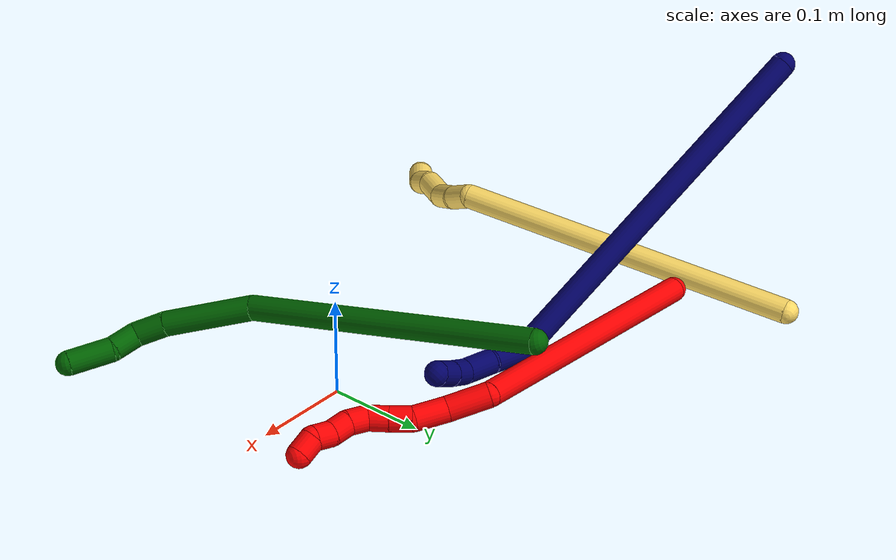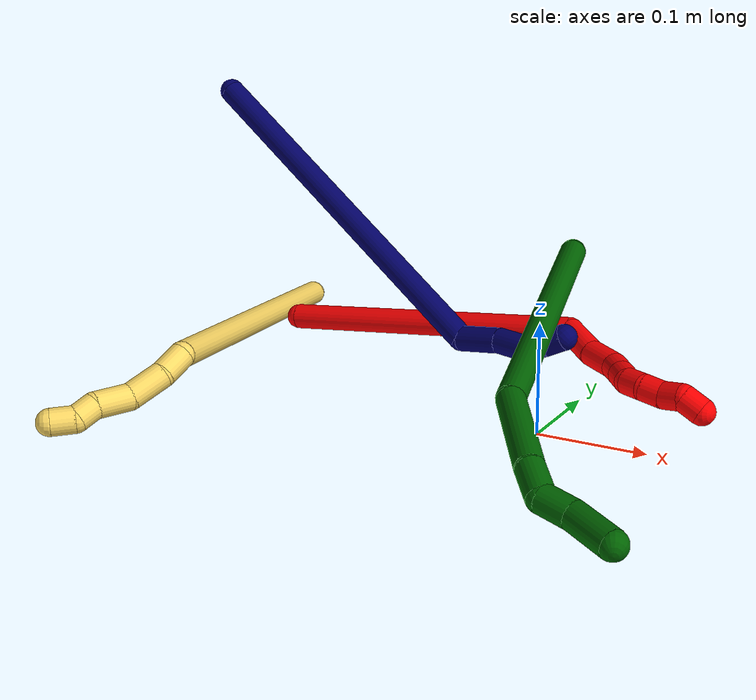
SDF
<sdf version="1.7">
 <world name="default">
  <model name="2">
   <static>0</static>
   <link name="2">
    <collision name="collision-cylinder-e_1_1_4">
     <pose>-0.047955 -0.00534 -0.143271 3.10434 -0.322783 -2.91372</pose>
     <geometry><cylinder><radius>0.0125</radius><length>0.302355</length></cylinder></geometry>
     <surface>
      <friction><ode><mu>1.16</mu><mu2>1.16</mu2><slip1>0</slip1><slip2>0</slip2></ode></friction>
      <contact><ode><kp>1e+06</kp><kd>1</kd><max_vel>0</max_vel><min_depth>0.001</min_depth></ode></contact>
     </surface>
    </collision>
    <visual name="visual-cylinder-e_1_1_4">
     <pose>-0.047955 -0.00534 -0.143271 3.10434 -0.322783 -2.91372</pose>
     <geometry><cylinder><radius>0.0125</radius><length>0.302355</length></cylinder></geometry>
     <material><ambient>1 0 0 1</ambient></material>
    </visual>
    <collision name="collision-cylinder-e_2_4_5">
     <pose>-0.087491 -0.01514 -0.305141 2.90628 0.414626 2.11762</pose>
     <geometry><cylinder><radius>0.0125</radius><length>0.041794</length></cylinder></geometry>
     <surface>
      <friction><ode><mu>1.16</mu><mu2>1.16</mu2><slip1>0</slip1><slip2>0</slip2></ode></friction>
      <contact><ode><kp>1e+06</kp><kd>1</kd><max_vel>0</max_vel><min_depth>0.001</min_depth></ode></contact>
     </surface>
    </collision>
    <visual name="visual-cylinder-e_2_4_5">
     <pose>-0.087491 -0.01514 -0.305141 2.90628 0.414626 2.11762</pose>
     <geometry><cylinder><radius>0.0125</radius><length>0.041794</length></cylinder></geometry>
     <material><ambient>1 0 0 1</ambient></material>
    </visual>
    <collision name="collision-cylinder-e_3_5_6">
     <pose>-0.074855 -0.021192 -0.339826 3.04288 0.255223 2.40659</pose>
     <geometry><cylinder><radius>0.0125</radius><length>0.03341</length></cylinder></geometry>
     <surface>
      <friction><ode><mu>1.16</mu><mu2>1.16</mu2><slip1>0</slip1><slip2>0</slip2></ode></friction>
      <contact><ode><kp>1e+06</kp><kd>1</kd><max_vel>0</max_vel><min_depth>0.001</min_depth></ode></contact>
     </surface>
    </collision>
    <visual name="visual-cylinder-e_3_5_6">
     <pose>-0.074855 -0.021192 -0.339826 3.04288 0.255223 2.40659</pose>
     <geometry><cylinder><radius>0.0125</radius><length>0.03341</length></cylinder></geometry>
     <material><ambient>1 0 0 1</ambient></material>
    </visual>
    <collision name="collision-cylinder-e_4_6_7">
     <pose>-0.064408 -0.022021 -0.364804 -3.05584 0.609384 -2.87042</pose>
     <geometry><cylinder><radius>0.0125</radius><length>0.02177</length></cylinder></geometry>
     <surface>
      <friction><ode><mu>1.16</mu><mu2>1.16</mu2><slip1>0</slip1><slip2>0</slip2></ode></friction>
      <contact><ode><kp>1e+06</kp><kd>1</kd><max_vel>0</max_vel><min_depth>0.001</min_depth></ode></contact>
     </surface>
    </collision>
    <visual name="visual-cylinder-e_4_6_7">
     <pose>-0.064408 -0.022021 -0.364804 -3.05584 0.609384 -2.87042</pose>
     <geometry><cylinder><radius>0.0125</radius><length>0.02177</length></cylinder></geometry>
     <material><ambient>1 0 0 1</ambient></material>
    </visual>
    <collision name="collision-cylinder-e_5_7_8">
     <pose>-0.052042 -0.020217 -0.381906 -3.01564 0.637981 -2.76428</pose>
     <geometry><cylinder><radius>0.0125</radius><length>0.020602</length></cylinder></geometry>
     <surface>
      <friction><ode><mu>1.16</mu><mu2>1.16</mu2><slip1>0</slip1><slip2>0</slip2></ode></friction>
      <contact><ode><kp>1e+06</kp><kd>1</kd><max_vel>0</max_vel><min_depth>0.001</min_depth></ode></contact>
     </surface>
    </collision>
    <visual name="visual-cylinder-e_5_7_8">
     <pose>-0.052042 -0.020217 -0.381906 -3.01564 0.637981 -2.76428</pose>
     <geometry><cylinder><radius>0.0125</radius><length>0.020602</length></cylinder></geometry>
     <material><ambient>1 0 0 1</ambient></material>
    </visual>
    <collision name="collision-cylinder-e_6_8_9">
     <pose>-0.044302 -0.019371 -0.399995 3.12199 0.161008 2.89982</pose>
     <geometry><cylinder><radius>0.0125</radius><length>0.020022</length></cylinder></geometry>
     <surface>
      <friction><ode><mu>1.16</mu><mu2>1.16</mu2><slip1>0</slip1><slip2>0</slip2></ode></friction>
      <contact><ode><kp>1e+06</kp><kd>1</kd><max_vel>0</max_vel><min_depth>0.001</min_depth></ode></contact>
     </surface>
    </collision>
    <visual name="visual-cylinder-e_6_8_9">
     <pose>-0.044302 -0.019371 -0.399995 3.12199 0.161008 2.89982</pose>
     <geometry><cylinder><radius>0.0125</radius><length>0.020022</length></cylinder></geometry>
     <material><ambient>1 0 0 1</ambient></material>
    </visual>
    <collision name="collision-cylinder-e_7_9_10">
     <pose>-0.043679 -0.021997 -0.419546 2.89526 -0.098076 -0.754889</pose>
     <geometry><cylinder><radius>0.0125</radius><length>0.020042</length></cylinder></geometry>
     <surface>
      <friction><ode><mu>1.16</mu><mu2>1.16</mu2><slip1>0</slip1><slip2>0</slip2></ode></friction>
      <contact><ode><kp>1e+06</kp><kd>1</kd><max_vel>0</max_vel><min_depth>0.001</min_depth></ode></contact>
     </surface>
    </collision>
    <visual name="visual-cylinder-e_7_9_10">
     <pose>-0.043679 -0.021997 -0.419546 2.89526 -0.098076 -0.754889</pose>
     <geometry><cylinder><radius>0.0125</radius><length>0.020042</length></cylinder></geometry>
     <material><ambient>1 0 0 1</ambient></material>
    </visual>
    <collision name="collision-cylinder-e_8_10_11">
     <pose>-0.045313 -0.023773 -0.439177 -3.0759 -0.065297 1.56476</pose>
     <geometry><cylinder><radius>0.0125</radius><length>0.020004</length></cylinder></geometry>
     <surface>
      <friction><ode><mu>1.16</mu><mu2>1.16</mu2><slip1>0</slip1><slip2>0</slip2></ode></friction>
      <contact><ode><kp>1e+06</kp><kd>1</kd><max_vel>0</max_vel><min_depth>0.001</min_depth></ode></contact>
     </surface>
    </collision>
    <visual name="visual-cylinder-e_8_10_11">
     <pose>-0.045313 -0.023773 -0.439177 -3.0759 -0.065297 1.56476</pose>
     <geometry><cylinder><radius>0.0125</radius><length>0.020004</length></cylinder></geometry>
     <material><ambient>1 0 0 1</ambient></material>
    </visual>
    <collision name="collision-cylinder-e_9_11_2">
     <pose>-0.046857 -0.028746 -0.457354 2.54108 -0.089302 -0.286642</pose>
     <geometry><cylinder><radius>0.0125</radius><length>0.02</length></cylinder></geometry>
     <surface>
      <friction><ode><mu>1.16</mu><mu2>1.16</mu2><slip1>0</slip1><slip2>0</slip2></ode></friction>
      <contact><ode><kp>1e+06</kp><kd>1</kd><max_vel>0</max_vel><min_depth>0.001</min_depth></ode></contact>
     </surface>
    </collision>
    <visual name="visual-cylinder-e_9_11_2">
     <pose>-0.046857 -0.028746 -0.457354 2.54108 -0.089302 -0.286642</pose>
     <geometry><cylinder><radius>0.0125</radius><length>0.02</length></cylinder></geometry>
     <material><ambient>1 0 0 1</ambient></material>
    </visual>
    <collision name="collision-sphere-2">
     <pose>-0.047749 -0.034374 -0.465572 0 -0 0</pose>
     <geometry><sphere><radius>0.0125</radius></sphere></geometry>
     <surface>
      <friction><ode><mu>1.16</mu><mu2>1.16</mu2><slip1>0</slip1><slip2>0</slip2></ode></friction>
      <contact><ode><kp>1e+06</kp><kd>1</kd><max_vel>0</max_vel><min_depth>0.001</min_depth></ode></contact>
     </surface>
    </collision>
    <visual name="visual-sphere-2">
     <pose>-0.047749 -0.034374 -0.465572 0 -0 0</pose>
     <geometry><sphere><radius>0.0125</radius></sphere></geometry>
     <material><ambient>1 0 0 1</ambient></material>
    </visual>
    <collision name="collision-sphere-11">
     <pose>-0.045965 -0.023118 -0.449136 0 -0 0</pose>
     <geometry><sphere><radius>0.0125</radius></sphere></geometry>
     <surface>
      <friction><ode><mu>1.16</mu><mu2>1.16</mu2><slip1>0</slip1><slip2>0</slip2></ode></friction>
      <contact><ode><kp>1e+06</kp><kd>1</kd><max_vel>0</max_vel><min_depth>0.001</min_depth></ode></contact>
     </surface>
    </collision>
    <visual name="visual-sphere-11">
     <pose>-0.045965 -0.023118 -0.449136 0 -0 0</pose>
     <geometry><sphere><radius>0.0125</radius></sphere></geometry>
     <material><ambient>1 0 0 1</ambient></material>
    </visual>
    <collision name="collision-sphere-10">
     <pose>-0.04466 -0.024428 -0.429218 0 -0 0</pose>
     <geometry><sphere><radius>0.0125</radius></sphere></geometry>
     <surface>
      <friction><ode><mu>1.16</mu><mu2>1.16</mu2><slip1>0</slip1><slip2>0</slip2></ode></friction>
      <contact><ode><kp>1e+06</kp><kd>1</kd><max_vel>0</max_vel><min_depth>0.001</min_depth></ode></contact>
     </surface>
    </collision>
    <visual name="visual-sphere-10">
     <pose>-0.04466 -0.024428 -0.429218 0 -0 0</pose>
     <geometry><sphere><radius>0.0125</radius></sphere></geometry>
     <material><ambient>1 0 0 1</ambient></material>
    </visual>
    <collision name="collision-sphere-9">
     <pose>-0.042698 -0.019565 -0.409874 0 -0 0</pose>
     <geometry><sphere><radius>0.0125</radius></sphere></geometry>
     <surface>
      <friction><ode><mu>1.16</mu><mu2>1.16</mu2><slip1>0</slip1><slip2>0</slip2></ode></friction>
      <contact><ode><kp>1e+06</kp><kd>1</kd><max_vel>0</max_vel><min_depth>0.001</min_depth></ode></contact>
     </surface>
    </collision>
    <visual name="visual-sphere-9">
     <pose>-0.042698 -0.019565 -0.409874 0 -0 0</pose>
     <geometry><sphere><radius>0.0125</radius></sphere></geometry>
     <material><ambient>1 0 0 1</ambient></material>
    </visual>
    <collision name="collision-sphere-4">
     <pose>-0.095909 -0.010681 -0.286542 0 -0 0</pose>
     <geometry><sphere><radius>0.0125</radius></sphere></geometry>
     <surface>
      <friction><ode><mu>1.16</mu><mu2>1.16</mu2><slip1>0</slip1><slip2>0</slip2></ode></friction>
      <contact><ode><kp>1e+06</kp><kd>1</kd><max_vel>0</max_vel><min_depth>0.001</min_depth></ode></contact>
     </surface>
    </collision>
    <visual name="visual-sphere-4">
     <pose>-0.095909 -0.010681 -0.286542 0 -0 0</pose>
     <geometry><sphere><radius>0.0125</radius></sphere></geometry>
     <material><ambient>1 0 0 1</ambient></material>
    </visual>
    <collision name="collision-sphere-1">
     <geometry><sphere><radius>0.0125</radius></sphere></geometry>
     <surface>
      <friction><ode><mu>1.16</mu><mu2>1.16</mu2><slip1>0</slip1><slip2>0</slip2></ode></friction>
      <contact><ode><kp>1e+06</kp><kd>1</kd><max_vel>0</max_vel><min_depth>0.001</min_depth></ode></contact>
     </surface>
    </collision>
    <visual name="visual-sphere-1">
     <geometry><sphere><radius>0.0125</radius></sphere></geometry>
     <material><ambient>1 0 0 1</ambient></material>
    </visual>
    <collision name="collision-sphere-8">
     <pose>-0.045907 -0.019177 -0.390115 0 -0 0</pose>
     <geometry><sphere><radius>0.0125</radius></sphere></geometry>
     <surface>
      <friction><ode><mu>1.16</mu><mu2>1.16</mu2><slip1>0</slip1><slip2>0</slip2></ode></friction>
      <contact><ode><kp>1e+06</kp><kd>1</kd><max_vel>0</max_vel><min_depth>0.001</min_depth></ode></contact>
     </surface>
    </collision>
    <visual name="visual-sphere-8">
     <pose>-0.045907 -0.019177 -0.390115 0 -0 0</pose>
     <geometry><sphere><radius>0.0125</radius></sphere></geometry>
     <material><ambient>1 0 0 1</ambient></material>
    </visual>
    <collision name="collision-sphere-5">
     <pose>-0.079073 -0.019599 -0.323741 0 -0 0</pose>
     <geometry><sphere><radius>0.0125</radius></sphere></geometry>
     <surface>
      <friction><ode><mu>1.16</mu><mu2>1.16</mu2><slip1>0</slip1><slip2>0</slip2></ode></friction>
      <contact><ode><kp>1e+06</kp><kd>1</kd><max_vel>0</max_vel><min_depth>0.001</min_depth></ode></contact>
     </surface>
    </collision>
    <visual name="visual-sphere-5">
     <pose>-0.079073 -0.019599 -0.323741 0 -0 0</pose>
     <geometry><sphere><radius>0.0125</radius></sphere></geometry>
     <material><ambient>1 0 0 1</ambient></material>
    </visual>
    <collision name="collision-sphere-6">
     <pose>-0.070638 -0.022785 -0.355911 0 -0 0</pose>
     <geometry><sphere><radius>0.0125</radius></sphere></geometry>
     <surface>
      <friction><ode><mu>1.16</mu><mu2>1.16</mu2><slip1>0</slip1><slip2>0</slip2></ode></friction>
      <contact><ode><kp>1e+06</kp><kd>1</kd><max_vel>0</max_vel><min_depth>0.001</min_depth></ode></contact>
     </surface>
    </collision>
    <visual name="visual-sphere-6">
     <pose>-0.070638 -0.022785 -0.355911 0 -0 0</pose>
     <geometry><sphere><radius>0.0125</radius></sphere></geometry>
     <material><ambient>1 0 0 1</ambient></material>
    </visual>
    <collision name="collision-sphere-7">
     <pose>-0.058178 -0.021256 -0.373697 0 -0 0</pose>
     <geometry><sphere><radius>0.0125</radius></sphere></geometry>
     <surface>
      <friction><ode><mu>1.16</mu><mu2>1.16</mu2><slip1>0</slip1><slip2>0</slip2></ode></friction>
      <contact><ode><kp>1e+06</kp><kd>1</kd><max_vel>0</max_vel><min_depth>0.001</min_depth></ode></contact>
     </surface>
    </collision>
    <visual name="visual-sphere-7">
     <pose>-0.058178 -0.021256 -0.373697 0 -0 0</pose>
     <geometry><sphere><radius>0.0125</radius></sphere></geometry>
     <material><ambient>1 0 0 1</ambient></material>
    </visual>
    <inertial>
     <pose>-0.053475 -0.011461 -0.23517 0 -0 0</pose>
     <mass>0.5</mass>
     <inertia>
      <ixx>-0.002638</ixx>
      <ixy>0</ixy>
      <ixz>0</ixz>
      <iyy>0.00178</iyy>
      <iyz>0</iyz>
      <izz>0.000777</izz>
     </inertia>
    </inertial>
   </link>
   <pose>-0.33629 0.153058 0.019362 1.62348 0.239441 -1.85914</pose>
  </model>
  <model name="5">
   <static>0</static>
   <link name="5">
    <collision name="collision-cylinder-e_1_1_4">
     <pose>0.083844 -0.143086 -0.069261 2.0216 0.485349 0.752132</pose>
     <geometry><cylinder><radius>0.0125</radius><length>0.359447</length></cylinder></geometry>
     <surface>
      <friction><ode><mu>1.16</mu><mu2>1.16</mu2><slip1>0</slip1><slip2>0</slip2></ode></friction>
      <contact><ode><kp>1e+06</kp><kd>1</kd><max_vel>0</max_vel><min_depth>0.001</min_depth></ode></contact>
     </surface>
    </collision>
    <visual name="visual-cylinder-e_1_1_4">
     <pose>0.083844 -0.143086 -0.069261 2.0216 0.485349 0.752132</pose>
     <geometry><cylinder><radius>0.0125</radius><length>0.359447</length></cylinder></geometry>
     <material><ambient>1 0.858824 0.4 1</ambient></material>
    </visual>
    <collision name="collision-cylinder-e_2_4_5">
     <pose>0.177848 -0.289828 -0.1474 2.75096 0.813667 2.2807</pose>
     <geometry><cylinder><radius>0.0125</radius><length>0.027957</length></cylinder></geometry>
     <surface>
      <friction><ode><mu>1.16</mu><mu2>1.16</mu2><slip1>0</slip1><slip2>0</slip2></ode></friction>
      <contact><ode><kp>1e+06</kp><kd>1</kd><max_vel>0</max_vel><min_depth>0.001</min_depth></ode></contact>
     </surface>
    </collision>
    <visual name="visual-cylinder-e_2_4_5">
     <pose>0.177848 -0.289828 -0.1474 2.75096 0.813667 2.2807</pose>
     <geometry><cylinder><radius>0.0125</radius><length>0.027957</length></cylinder></geometry>
     <material><ambient>1 0.858824 0.4 1</ambient></material>
    </visual>
    <collision name="collision-cylinder-e_3_5_6">
     <pose>0.198351 -0.295561 -0.170688 2.99847 0.617696 2.69957</pose>
     <geometry><cylinder><radius>0.0125</radius><length>0.035719</length></cylinder></geometry>
     <surface>
      <friction><ode><mu>1.16</mu><mu2>1.16</mu2><slip1>0</slip1><slip2>0</slip2></ode></friction>
      <contact><ode><kp>1e+06</kp><kd>1</kd><max_vel>0</max_vel><min_depth>0.001</min_depth></ode></contact>
     </surface>
    </collision>
    <visual name="visual-cylinder-e_3_5_6">
     <pose>0.198351 -0.295561 -0.170688 2.99847 0.617696 2.69957</pose>
     <geometry><cylinder><radius>0.0125</radius><length>0.035719</length></cylinder></geometry>
     <material><ambient>1 0.858824 0.4 1</ambient></material>
    </visual>
    <collision name="collision-cylinder-e_4_6_7">
     <pose>0.213713 -0.303357 -0.200264 2.78096 0.300263 1.38531</pose>
     <geometry><cylinder><radius>0.0125</radius><length>0.033935</length></cylinder></geometry>
     <surface>
      <friction><ode><mu>1.16</mu><mu2>1.16</mu2><slip1>0</slip1><slip2>0</slip2></ode></friction>
      <contact><ode><kp>1e+06</kp><kd>1</kd><max_vel>0</max_vel><min_depth>0.001</min_depth></ode></contact>
     </surface>
    </collision>
    <visual name="visual-cylinder-e_4_6_7">
     <pose>0.213713 -0.303357 -0.200264 2.78096 0.300263 1.38531</pose>
     <geometry><cylinder><radius>0.0125</radius><length>0.033935</length></cylinder></geometry>
     <material><ambient>1 0.858824 0.4 1</ambient></material>
    </visual>
    <collision name="collision-cylinder-e_5_7_8">
     <pose>0.225171 -0.311253 -0.223149 2.86675 0.67645 2.39238</pose>
     <geometry><cylinder><radius>0.0125</radius><length>0.020572</length></cylinder></geometry>
     <surface>
      <friction><ode><mu>1.16</mu><mu2>1.16</mu2><slip1>0</slip1><slip2>0</slip2></ode></friction>
      <contact><ode><kp>1e+06</kp><kd>1</kd><max_vel>0</max_vel><min_depth>0.001</min_depth></ode></contact>
     </surface>
    </collision>
    <visual name="visual-cylinder-e_5_7_8">
     <pose>0.225171 -0.311253 -0.223149 2.86675 0.67645 2.39238</pose>
     <geometry><cylinder><radius>0.0125</radius><length>0.020572</length></cylinder></geometry>
     <material><ambient>1 0.858824 0.4 1</ambient></material>
    </visual>
    <collision name="collision-cylinder-e_6_8_2">
     <pose>0.23256 -0.3142 -0.241988 3.07242 0.085082 1.77656</pose>
     <geometry><cylinder><radius>0.0125</radius><length>0.022371</length></cylinder></geometry>
     <surface>
      <friction><ode><mu>1.16</mu><mu2>1.16</mu2><slip1>0</slip1><slip2>0</slip2></ode></friction>
      <contact><ode><kp>1e+06</kp><kd>1</kd><max_vel>0</max_vel><min_depth>0.001</min_depth></ode></contact>
     </surface>
    </collision>
    <visual name="visual-cylinder-e_6_8_2">
     <pose>0.23256 -0.3142 -0.241988 3.07242 0.085082 1.77656</pose>
     <geometry><cylinder><radius>0.0125</radius><length>0.022371</length></cylinder></geometry>
     <material><ambient>1 0.858824 0.4 1</ambient></material>
    </visual>
    <collision name="collision-sphere-2">
     <pose>0.233511 -0.31497 -0.253106 0 -0 0</pose>
     <geometry><sphere><radius>0.0125</radius></sphere></geometry>
     <surface>
      <friction><ode><mu>1.16</mu><mu2>1.16</mu2><slip1>0</slip1><slip2>0</slip2></ode></friction>
      <contact><ode><kp>1e+06</kp><kd>1</kd><max_vel>0</max_vel><min_depth>0.001</min_depth></ode></contact>
     </surface>
    </collision>
    <visual name="visual-sphere-2">
     <pose>0.233511 -0.31497 -0.253106 0 -0 0</pose>
     <geometry><sphere><radius>0.0125</radius></sphere></geometry>
     <material><ambient>1 0.858824 0.4 1</ambient></material>
    </visual>
    <collision name="collision-sphere-4">
     <pose>0.167688 -0.286172 -0.138522 0 -0 0</pose>
     <geometry><sphere><radius>0.0125</radius></sphere></geometry>
     <surface>
      <friction><ode><mu>1.16</mu><mu2>1.16</mu2><slip1>0</slip1><slip2>0</slip2></ode></friction>
      <contact><ode><kp>1e+06</kp><kd>1</kd><max_vel>0</max_vel><min_depth>0.001</min_depth></ode></contact>
     </surface>
    </collision>
    <visual name="visual-sphere-4">
     <pose>0.167688 -0.286172 -0.138522 0 -0 0</pose>
     <geometry><sphere><radius>0.0125</radius></sphere></geometry>
     <material><ambient>1 0.858824 0.4 1</ambient></material>
    </visual>
    <collision name="collision-sphere-1">
     <geometry><sphere><radius>0.0125</radius></sphere></geometry>
     <surface>
      <friction><ode><mu>1.16</mu><mu2>1.16</mu2><slip1>0</slip1><slip2>0</slip2></ode></friction>
      <contact><ode><kp>1e+06</kp><kd>1</kd><max_vel>0</max_vel><min_depth>0.001</min_depth></ode></contact>
     </surface>
    </collision>
    <visual name="visual-sphere-1">
     <geometry><sphere><radius>0.0125</radius></sphere></geometry>
     <material><ambient>1 0.858824 0.4 1</ambient></material>
    </visual>
    <collision name="collision-sphere-8">
     <pose>0.23161 -0.31343 -0.230869 0 -0 0</pose>
     <geometry><sphere><radius>0.0125</radius></sphere></geometry>
     <surface>
      <friction><ode><mu>1.16</mu><mu2>1.16</mu2><slip1>0</slip1><slip2>0</slip2></ode></friction>
      <contact><ode><kp>1e+06</kp><kd>1</kd><max_vel>0</max_vel><min_depth>0.001</min_depth></ode></contact>
     </surface>
    </collision>
    <visual name="visual-sphere-8">
     <pose>0.23161 -0.31343 -0.230869 0 -0 0</pose>
     <geometry><sphere><radius>0.0125</radius></sphere></geometry>
     <material><ambient>1 0.858824 0.4 1</ambient></material>
    </visual>
    <collision name="collision-sphere-5">
     <pose>0.188008 -0.293484 -0.156277 0 -0 0</pose>
     <geometry><sphere><radius>0.0125</radius></sphere></geometry>
     <surface>
      <friction><ode><mu>1.16</mu><mu2>1.16</mu2><slip1>0</slip1><slip2>0</slip2></ode></friction>
      <contact><ode><kp>1e+06</kp><kd>1</kd><max_vel>0</max_vel><min_depth>0.001</min_depth></ode></contact>
     </surface>
    </collision>
    <visual name="visual-sphere-5">
     <pose>0.188008 -0.293484 -0.156277 0 -0 0</pose>
     <geometry><sphere><radius>0.0125</radius></sphere></geometry>
     <material><ambient>1 0.858824 0.4 1</ambient></material>
    </visual>
    <collision name="collision-sphere-6">
     <pose>0.208694 -0.297637 -0.185098 0 -0 0</pose>
     <geometry><sphere><radius>0.0125</radius></sphere></geometry>
     <surface>
      <friction><ode><mu>1.16</mu><mu2>1.16</mu2><slip1>0</slip1><slip2>0</slip2></ode></friction>
      <contact><ode><kp>1e+06</kp><kd>1</kd><max_vel>0</max_vel><min_depth>0.001</min_depth></ode></contact>
     </surface>
    </collision>
    <visual name="visual-sphere-6">
     <pose>0.208694 -0.297637 -0.185098 0 -0 0</pose>
     <geometry><sphere><radius>0.0125</radius></sphere></geometry>
     <material><ambient>1 0.858824 0.4 1</ambient></material>
    </visual>
    <collision name="collision-sphere-7">
     <pose>0.218731 -0.309076 -0.21543 0 -0 0</pose>
     <geometry><sphere><radius>0.0125</radius></sphere></geometry>
     <surface>
      <friction><ode><mu>1.16</mu><mu2>1.16</mu2><slip1>0</slip1><slip2>0</slip2></ode></friction>
      <contact><ode><kp>1e+06</kp><kd>1</kd><max_vel>0</max_vel><min_depth>0.001</min_depth></ode></contact>
     </surface>
    </collision>
    <visual name="visual-sphere-7">
     <pose>0.218731 -0.309076 -0.21543 0 -0 0</pose>
     <geometry><sphere><radius>0.0125</radius></sphere></geometry>
     <material><ambient>1 0.858824 0.4 1</ambient></material>
    </visual>
    <inertial>
     <pose>0.118563 -0.187636 -0.103826 0 -0 0</pose>
     <mass>0.5</mass>
     <inertia>
      <ixx>0.004879</ixx>
      <ixy>0</ixy>
      <ixz>0</ixz>
      <iyy>0.00222</iyy>
      <iyz>0</iyz>
      <izz>0.001256</izz>
     </inertia>
    </inertial>
   </link>
   <pose>-0.383306 0.258206 0.012989 -1.53387 0.919359 -0.934013</pose>
  </model>
  <model name="6">
   <static>0</static>
   <link name="6">
    <collision name="collision-cylinder-e_1_1_4">
     <pose>-0.040627 0.000309 -0.146952 -3.13949 -0.269724 3.1261</pose>
     <geometry><cylinder><radius>0.0125</radius><length>0.30493</length></cylinder></geometry>
     <surface>
      <friction><ode><mu>1.16</mu><mu2>1.16</mu2><slip1>0</slip1><slip2>0</slip2></ode></friction>
      <contact><ode><kp>1e+06</kp><kd>1</kd><max_vel>0</max_vel><min_depth>0.001</min_depth></ode></contact>
     </surface>
    </collision>
    <visual name="visual-cylinder-e_1_1_4">
     <pose>-0.040627 0.000309 -0.146952 -3.13949 -0.269724 3.1261</pose>
     <geometry><cylinder><radius>0.0125</radius><length>0.30493</length></cylinder></geometry>
     <material><ambient>0 0.392157 0.003922 1</ambient></material>
    </visual>
    <collision name="collision-cylinder-e_2_4_5">
     <pose>-0.077877 -0.006277 -0.338047 2.98664 0.075432 0.904871</pose>
     <geometry><cylinder><radius>0.0125</radius><length>0.08961</length></cylinder></geometry>
     <surface>
      <friction><ode><mu>1.16</mu><mu2>1.16</mu2><slip1>0</slip1><slip2>0</slip2></ode></friction>
      <contact><ode><kp>1e+06</kp><kd>1</kd><max_vel>0</max_vel><min_depth>0.001</min_depth></ode></contact>
     </surface>
    </collision>
    <visual name="visual-cylinder-e_2_4_5">
     <pose>-0.077877 -0.006277 -0.338047 2.98664 0.075432 0.904871</pose>
     <geometry><cylinder><radius>0.0125</radius><length>0.08961</length></cylinder></geometry>
     <material><ambient>0 0.392157 0.003922 1</ambient></material>
    </visual>
    <collision name="collision-cylinder-e_3_5_6">
     <pose>-0.0708 -0.015067 -0.397707 3.02015 0.232438 2.18137</pose>
     <geometry><cylinder><radius>0.0125</radius><length>0.032131</length></cylinder></geometry>
     <surface>
      <friction><ode><mu>1.16</mu><mu2>1.16</mu2><slip1>0</slip1><slip2>0</slip2></ode></friction>
      <contact><ode><kp>1e+06</kp><kd>1</kd><max_vel>0</max_vel><min_depth>0.001</min_depth></ode></contact>
     </surface>
    </collision>
    <visual name="visual-cylinder-e_3_5_6">
     <pose>-0.0708 -0.015067 -0.397707 3.02015 0.232438 2.18137</pose>
     <geometry><cylinder><radius>0.0125</radius><length>0.032131</length></cylinder></geometry>
     <material><ambient>0 0.392157 0.003922 1</ambient></material>
    </visual>
    <collision name="collision-cylinder-e_4_6_7">
     <pose>-0.058343 -0.024442 -0.42183 2.4259 0.654861 1.47476</pose>
     <geometry><cylinder><radius>0.0125</radius><length>0.028752</length></cylinder></geometry>
     <surface>
      <friction><ode><mu>1.16</mu><mu2>1.16</mu2><slip1>0</slip1><slip2>0</slip2></ode></friction>
      <contact><ode><kp>1e+06</kp><kd>1</kd><max_vel>0</max_vel><min_depth>0.001</min_depth></ode></contact>
     </surface>
    </collision>
    <visual name="visual-cylinder-e_4_6_7">
     <pose>-0.058343 -0.024442 -0.42183 2.4259 0.654861 1.47476</pose>
     <geometry><cylinder><radius>0.0125</radius><length>0.028752</length></cylinder></geometry>
     <material><ambient>0 0.392157 0.003922 1</ambient></material>
    </visual>
    <collision name="collision-cylinder-e_5_7_2">
     <pose>-0.041796 -0.042841 -0.448235 2.59142 0.357115 1.13785</pose>
     <geometry><cylinder><radius>0.0125</radius><length>0.044577</length></cylinder></geometry>
     <surface>
      <friction><ode><mu>1.16</mu><mu2>1.16</mu2><slip1>0</slip1><slip2>0</slip2></ode></friction>
      <contact><ode><kp>1e+06</kp><kd>1</kd><max_vel>0</max_vel><min_depth>0.001</min_depth></ode></contact>
     </surface>
    </collision>
    <visual name="visual-cylinder-e_5_7_2">
     <pose>-0.041796 -0.042841 -0.448235 2.59142 0.357115 1.13785</pose>
     <geometry><cylinder><radius>0.0125</radius><length>0.044577</length></cylinder></geometry>
     <material><ambient>0 0.392157 0.003922 1</ambient></material>
    </visual>
    <collision name="collision-sphere-2">
     <pose>-0.034005 -0.053759 -0.466036 0 -0 0</pose>
     <geometry><sphere><radius>0.0125</radius></sphere></geometry>
     <surface>
      <friction><ode><mu>1.16</mu><mu2>1.16</mu2><slip1>0</slip1><slip2>0</slip2></ode></friction>
      <contact><ode><kp>1e+06</kp><kd>1</kd><max_vel>0</max_vel><min_depth>0.001</min_depth></ode></contact>
     </surface>
    </collision>
    <visual name="visual-sphere-2">
     <pose>-0.034005 -0.053759 -0.466036 0 -0 0</pose>
     <geometry><sphere><radius>0.0125</radius></sphere></geometry>
     <material><ambient>0 0.392157 0.003922 1</ambient></material>
    </visual>
    <collision name="collision-sphere-7">
     <pose>-0.049588 -0.031923 -0.430434 0 -0 0</pose>
     <geometry><sphere><radius>0.0125</radius></sphere></geometry>
     <surface>
      <friction><ode><mu>1.16</mu><mu2>1.16</mu2><slip1>0</slip1><slip2>0</slip2></ode></friction>
      <contact><ode><kp>1e+06</kp><kd>1</kd><max_vel>0</max_vel><min_depth>0.001</min_depth></ode></contact>
     </surface>
    </collision>
    <visual name="visual-sphere-7">
     <pose>-0.049588 -0.031923 -0.430434 0 -0 0</pose>
     <geometry><sphere><radius>0.0125</radius></sphere></geometry>
     <material><ambient>0 0.392157 0.003922 1</ambient></material>
    </visual>
    <collision name="collision-sphere-6">
     <pose>-0.067099 -0.01696 -0.413226 0 -0 0</pose>
     <geometry><sphere><radius>0.0125</radius></sphere></geometry>
     <surface>
      <friction><ode><mu>1.16</mu><mu2>1.16</mu2><slip1>0</slip1><slip2>0</slip2></ode></friction>
      <contact><ode><kp>1e+06</kp><kd>1</kd><max_vel>0</max_vel><min_depth>0.001</min_depth></ode></contact>
     </surface>
    </collision>
    <visual name="visual-sphere-6">
     <pose>-0.067099 -0.01696 -0.413226 0 -0 0</pose>
     <geometry><sphere><radius>0.0125</radius></sphere></geometry>
     <material><ambient>0 0.392157 0.003922 1</ambient></material>
    </visual>
    <collision name="collision-sphere-5">
     <pose>-0.0745 -0.013173 -0.382189 0 -0 0</pose>
     <geometry><sphere><radius>0.0125</radius></sphere></geometry>
     <surface>
      <friction><ode><mu>1.16</mu><mu2>1.16</mu2><slip1>0</slip1><slip2>0</slip2></ode></friction>
      <contact><ode><kp>1e+06</kp><kd>1</kd><max_vel>0</max_vel><min_depth>0.001</min_depth></ode></contact>
     </surface>
    </collision>
    <visual name="visual-sphere-5">
     <pose>-0.0745 -0.013173 -0.382189 0 -0 0</pose>
     <geometry><sphere><radius>0.0125</radius></sphere></geometry>
     <material><ambient>0 0.392157 0.003922 1</ambient></material>
    </visual>
    <collision name="collision-sphere-1">
     <geometry><sphere><radius>0.0125</radius></sphere></geometry>
     <surface>
      <friction><ode><mu>1.16</mu><mu2>1.16</mu2><slip1>0</slip1><slip2>0</slip2></ode></friction>
      <contact><ode><kp>1e+06</kp><kd>1</kd><max_vel>0</max_vel><min_depth>0.001</min_depth></ode></contact>
     </surface>
    </collision>
    <visual name="visual-sphere-1">
     <geometry><sphere><radius>0.0125</radius></sphere></geometry>
     <material><ambient>0 0.392157 0.003922 1</ambient></material>
    </visual>
    <collision name="collision-sphere-4">
     <pose>-0.081253 0.000618 -0.293904 0 -0 0</pose>
     <geometry><sphere><radius>0.0125</radius></sphere></geometry>
     <surface>
      <friction><ode><mu>1.16</mu><mu2>1.16</mu2><slip1>0</slip1><slip2>0</slip2></ode></friction>
      <contact><ode><kp>1e+06</kp><kd>1</kd><max_vel>0</max_vel><min_depth>0.001</min_depth></ode></contact>
     </surface>
    </collision>
    <visual name="visual-sphere-4">
     <pose>-0.081253 0.000618 -0.293904 0 -0 0</pose>
     <geometry><sphere><radius>0.0125</radius></sphere></geometry>
     <material><ambient>0 0.392157 0.003922 1</ambient></material>
    </visual>
    <inertial>
     <pose>-0.050365 -0.00713 -0.239981 0 -0 0</pose>
     <mass>0.5</mass>
     <inertia>
      <ixx>-0.002152</ixx>
      <ixy>0</ixy>
      <ixz>0</ixz>
      <iyy>0.002432</iyy>
      <iyz>0</iyz>
      <izz>0.000597</izz>
     </inertia>
    </inertial>
   </link>
   <pose>-0.050683 0.199779 0.113229 -1.12943 0.665058 0.711799</pose>
  </model>
  <model name="7">
   <static>0</static>
   <link name="7">
    <collision name="collision-cylinder-e_1_1_4">
     <pose>0.000517 0.002237 -0.191321 -3.1299 0.002701 -0.454076</pose>
     <geometry><cylinder><radius>0.0125</radius><length>0.382669</length></cylinder></geometry>
     <surface>
      <friction><ode><mu>1.16</mu><mu2>1.16</mu2><slip1>0</slip1><slip2>0</slip2></ode></friction>
      <contact><ode><kp>1e+06</kp><kd>1</kd><max_vel>0</max_vel><min_depth>0.001</min_depth></ode></contact>
     </surface>
    </collision>
    <visual name="visual-cylinder-e_1_1_4">
     <pose>0.000517 0.002237 -0.191321 -3.1299 0.002701 -0.454076</pose>
     <geometry><cylinder><radius>0.0125</radius><length>0.382669</length></cylinder></geometry>
     <material><ambient>0.003922 0 0.403922 1</ambient></material>
    </visual>
    <collision name="collision-cylinder-e_2_4_5">
     <pose>0.014781 0.000927 -0.398972 2.92775 0.688405 2.55975</pose>
     <geometry><cylinder><radius>0.0125</radius><length>0.043277</length></cylinder></geometry>
     <surface>
      <friction><ode><mu>1.16</mu><mu2>1.16</mu2><slip1>0</slip1><slip2>0</slip2></ode></friction>
      <contact><ode><kp>1e+06</kp><kd>1</kd><max_vel>0</max_vel><min_depth>0.001</min_depth></ode></contact>
     </surface>
    </collision>
    <visual name="visual-cylinder-e_2_4_5">
     <pose>0.014781 0.000927 -0.398972 2.92775 0.688405 2.55975</pose>
     <geometry><cylinder><radius>0.0125</radius><length>0.043277</length></cylinder></geometry>
     <material><ambient>0.003922 0 0.403922 1</ambient></material>
    </visual>
    <collision name="collision-cylinder-e_3_5_6">
     <pose>0.035819 -0.006633 -0.42865 2.84947 0.48195 2.06281</pose>
     <geometry><cylinder><radius>0.0125</radius><length>0.031461</length></cylinder></geometry>
     <surface>
      <friction><ode><mu>1.16</mu><mu2>1.16</mu2><slip1>0</slip1><slip2>0</slip2></ode></friction>
      <contact><ode><kp>1e+06</kp><kd>1</kd><max_vel>0</max_vel><min_depth>0.001</min_depth></ode></contact>
     </surface>
    </collision>
    <visual name="visual-cylinder-e_3_5_6">
     <pose>0.035819 -0.006633 -0.42865 2.84947 0.48195 2.06281</pose>
     <geometry><cylinder><radius>0.0125</radius><length>0.031461</length></cylinder></geometry>
     <material><ambient>0.003922 0 0.403922 1</ambient></material>
    </visual>
    <collision name="collision-cylinder-e_4_6_7">
     <pose>0.051773 -0.012205 -0.448007 2.88791 0.949011 2.65488</pose>
     <geometry><cylinder><radius>0.0125</radius><length>0.021316</length></cylinder></geometry>
     <surface>
      <friction><ode><mu>1.16</mu><mu2>1.16</mu2><slip1>0</slip1><slip2>0</slip2></ode></friction>
      <contact><ode><kp>1e+06</kp><kd>1</kd><max_vel>0</max_vel><min_depth>0.001</min_depth></ode></contact>
     </surface>
    </collision>
    <visual name="visual-cylinder-e_4_6_7">
     <pose>0.051773 -0.012205 -0.448007 2.88791 0.949011 2.65488</pose>
     <geometry><cylinder><radius>0.0125</radius><length>0.021316</length></cylinder></geometry>
     <material><ambient>0.003922 0 0.403922 1</ambient></material>
    </visual>
    <collision name="collision-cylinder-e_5_7_2">
     <pose>0.069458 -0.015779 -0.459282 2.776 1.01222 2.49775</pose>
     <geometry><cylinder><radius>0.0125</radius><length>0.021277</length></cylinder></geometry>
     <surface>
      <friction><ode><mu>1.16</mu><mu2>1.16</mu2><slip1>0</slip1><slip2>0</slip2></ode></friction>
      <contact><ode><kp>1e+06</kp><kd>1</kd><max_vel>0</max_vel><min_depth>0.001</min_depth></ode></contact>
     </surface>
    </collision>
    <visual name="visual-cylinder-e_5_7_2">
     <pose>0.069458 -0.015779 -0.459282 2.776 1.01222 2.49775</pose>
     <geometry><cylinder><radius>0.0125</radius><length>0.021277</length></cylinder></geometry>
     <material><ambient>0.003922 0 0.403922 1</ambient></material>
    </visual>
    <collision name="collision-sphere-2">
     <pose>0.07848 -0.017795 -0.464548 0 -0 0</pose>
     <geometry><sphere><radius>0.0125</radius></sphere></geometry>
     <surface>
      <friction><ode><mu>1.16</mu><mu2>1.16</mu2><slip1>0</slip1><slip2>0</slip2></ode></friction>
      <contact><ode><kp>1e+06</kp><kd>1</kd><max_vel>0</max_vel><min_depth>0.001</min_depth></ode></contact>
     </surface>
    </collision>
    <visual name="visual-sphere-2">
     <pose>0.07848 -0.017795 -0.464548 0 -0 0</pose>
     <geometry><sphere><radius>0.0125</radius></sphere></geometry>
     <material><ambient>0.003922 0 0.403922 1</ambient></material>
    </visual>
    <collision name="collision-sphere-7">
     <pose>0.060436 -0.013763 -0.454016 0 -0 0</pose>
     <geometry><sphere><radius>0.0125</radius></sphere></geometry>
     <surface>
      <friction><ode><mu>1.16</mu><mu2>1.16</mu2><slip1>0</slip1><slip2>0</slip2></ode></friction>
      <contact><ode><kp>1e+06</kp><kd>1</kd><max_vel>0</max_vel><min_depth>0.001</min_depth></ode></contact>
     </surface>
    </collision>
    <visual name="visual-sphere-7">
     <pose>0.060436 -0.013763 -0.454016 0 -0 0</pose>
     <geometry><sphere><radius>0.0125</radius></sphere></geometry>
     <material><ambient>0.003922 0 0.403922 1</ambient></material>
    </visual>
    <collision name="collision-sphere-6">
     <pose>0.04311 -0.010647 -0.441998 0 -0 0</pose>
     <geometry><sphere><radius>0.0125</radius></sphere></geometry>
     <surface>
      <friction><ode><mu>1.16</mu><mu2>1.16</mu2><slip1>0</slip1><slip2>0</slip2></ode></friction>
      <contact><ode><kp>1e+06</kp><kd>1</kd><max_vel>0</max_vel><min_depth>0.001</min_depth></ode></contact>
     </surface>
    </collision>
    <visual name="visual-sphere-6">
     <pose>0.04311 -0.010647 -0.441998 0 -0 0</pose>
     <geometry><sphere><radius>0.0125</radius></sphere></geometry>
     <material><ambient>0.003922 0 0.403922 1</ambient></material>
    </visual>
    <collision name="collision-sphere-5">
     <pose>0.028528 -0.002619 -0.415302 0 -0 0</pose>
     <geometry><sphere><radius>0.0125</radius></sphere></geometry>
     <surface>
      <friction><ode><mu>1.16</mu><mu2>1.16</mu2><slip1>0</slip1><slip2>0</slip2></ode></friction>
      <contact><ode><kp>1e+06</kp><kd>1</kd><max_vel>0</max_vel><min_depth>0.001</min_depth></ode></contact>
     </surface>
    </collision>
    <visual name="visual-sphere-5">
     <pose>0.028528 -0.002619 -0.415302 0 -0 0</pose>
     <geometry><sphere><radius>0.0125</radius></sphere></geometry>
     <material><ambient>0.003922 0 0.403922 1</ambient></material>
    </visual>
    <collision name="collision-sphere-1">
     <geometry><sphere><radius>0.0125</radius></sphere></geometry>
     <surface>
      <friction><ode><mu>1.16</mu><mu2>1.16</mu2><slip1>0</slip1><slip2>0</slip2></ode></friction>
      <contact><ode><kp>1e+06</kp><kd>1</kd><max_vel>0</max_vel><min_depth>0.001</min_depth></ode></contact>
     </surface>
    </collision>
    <visual name="visual-sphere-1">
     <geometry><sphere><radius>0.0125</radius></sphere></geometry>
     <material><ambient>0.003922 0 0.403922 1</ambient></material>
    </visual>
    <collision name="collision-sphere-4">
     <pose>0.001034 0.004474 -0.382642 0 -0 0</pose>
     <geometry><sphere><radius>0.0125</radius></sphere></geometry>
     <surface>
      <friction><ode><mu>1.16</mu><mu2>1.16</mu2><slip1>0</slip1><slip2>0</slip2></ode></friction>
      <contact><ode><kp>1e+06</kp><kd>1</kd><max_vel>0</max_vel><min_depth>0.001</min_depth></ode></contact>
     </surface>
    </collision>
    <visual name="visual-sphere-4">
     <pose>0.001034 0.004474 -0.382642 0 -0 0</pose>
     <geometry><sphere><radius>0.0125</radius></sphere></geometry>
     <material><ambient>0.003922 0 0.403922 1</ambient></material>
    </visual>
    <inertial>
     <pose>0.009092 0.000183 -0.246573 0 -0 0</pose>
     <mass>0.5</mass>
     <inertia>
      <ixx>0.00216</ixx>
      <ixy>0</ixy>
      <ixz>0</ixz>
      <iyy>-0.006245</iyy>
      <iyz>0</iyz>
      <izz>-0.000111</izz>
     </inertia>
    </inertial>
   </link>
   <pose>-0.443815 0.195259 0.244422 -0.585401 -0.852987 0.478102</pose>
  </model>
 </world>
</sdf>
